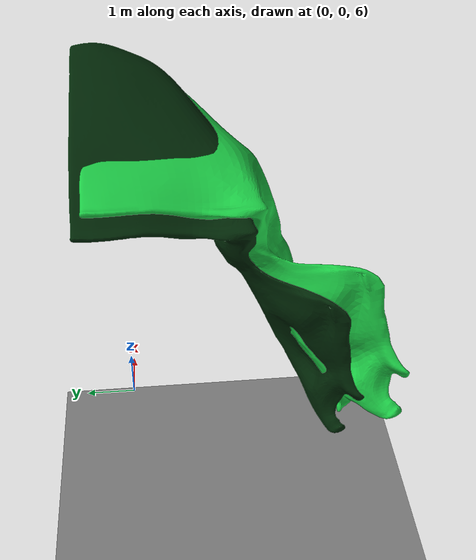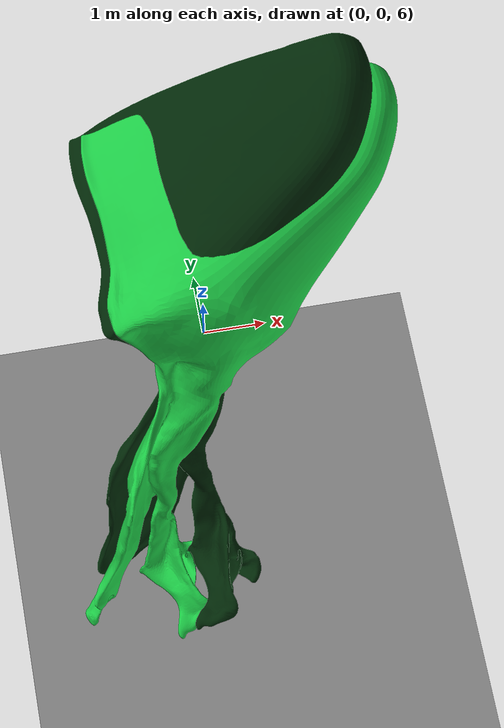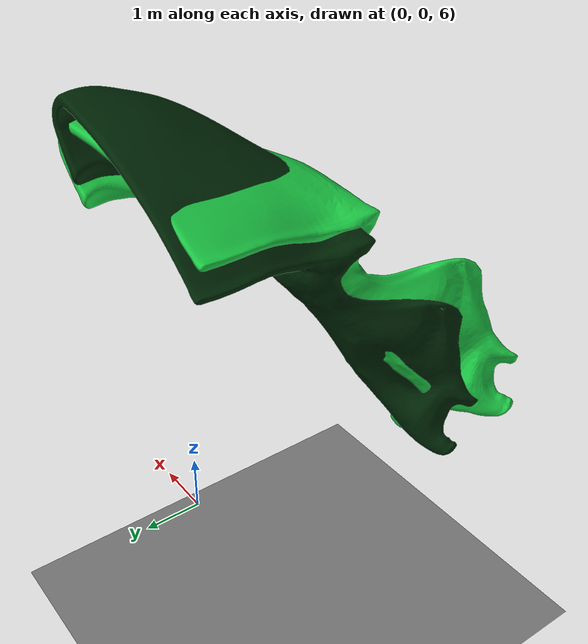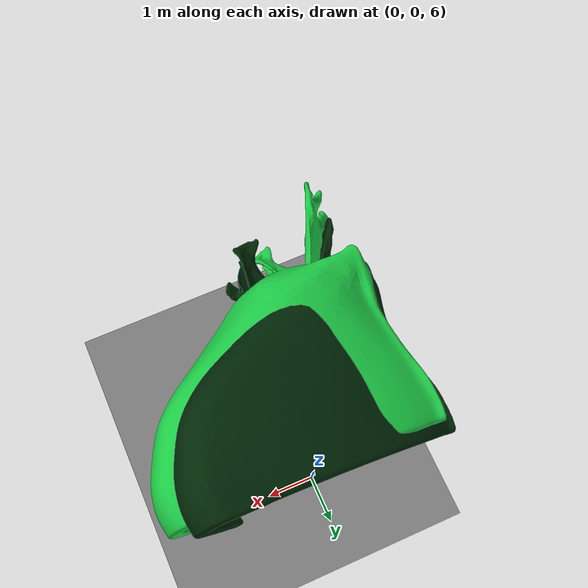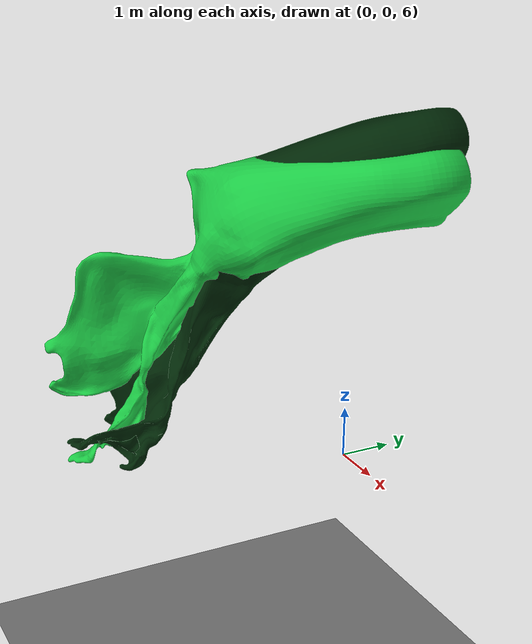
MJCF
<?xml version="1.0" ?>
<mujoco model="just_sla">
    <compiler angle="radian" coordinate="local"/>
    <option timestep="0.002" iterations="100" integrator="Euler" cone="pyramidal" jacobian="dense" solver="Newton">
        <flag sensornoise="enable"/>
    </option>
    <size nconmax="-1" njmax="-1" nuserdata="100"/>
    <asset>
        <mesh name="mesh_SLA_up" file="mesh_stl/SLA_up.stl"/>
        <mesh name="mesh_SLA_down" file="mesh_stl/SLA_down.stl"/>
    </asset>
    <worldbody>
        <geom name="floor" type="plane" size="9.139266967773438 13.406534194946289 0.009999999776482582 " pos="0.0 0.0 2.212449550628662" quat="1.0 0.0 0.0 0.0" mass="1.0" rgba="0.5 0.5 0.5 0.1" contype="1" conaffinity="1"/>
        <body name="SLA_up" pos="-0.31763917207717896 -2.6561203002929688 9.310388565063477" quat="0.9992823004722595 -3.393695280351494e-08 -0.0378803014755249 -9.429858671694547e-09">
            <geom name="SLA_up" type="mesh" pos="0 0 0" quat="1 0 0 0" rgba="0.0 0.15292608737945557 0.025186896324157715 1.0" mass="1.0" contype="1" conaffinity="1" mesh="mesh_SLA_up"/>
            <joint name="sla_world_slide" type="slide" axis="-0.8595173954963684 -0.4222044348716736 0.2880525588989258" pos="-6.124224682935164e-07 5.604622970167839e-07 2.1686087166017387e-06" stiffness="0.0" damping="0.0" springref="0.0" limited="false"/>
            <joint name="sla_world_hinge" type="hinge" axis="-1.1893912553787231 1.1162415742874146 0.9999716877937317" pos="-6.124224682935164e-07 5.604622970167839e-07 2.1686087166017387e-06" stiffness="0.0" damping="0.0" springref="0.0" limited="false"/>
<!--            limited="true" range="-0.2617993950843811 0.2617993950843811"-->
        </body>
        <body name="SLA_down" pos="-0.7016940116882324 -2.8406200408935547 9.407469749450684" quat="0.9962834715843201 -1.8140097424179658e-08 0.08613518625497818 1.019755568876235e-08">
            <geom name="SLA_down" type="mesh" pos="0 0 0" quat="1 0 0 0" rgba="0.11073798686265945 0.8000000715255737 0.27502915263175964 1.0" mass="0" contype="0" conaffinity="0" mesh="mesh_SLA_down"/>
        </body>
        <light directional="true" cutoff="4" exponent="20" diffuse="1 1 1" specular="0 0 0" pos="0.9 0.3 2.5" dir="-0.9 -0.3 -2.5"/>
    </worldbody>
    <contact>
        <exclude body1="SLA_up" body2="SLA_down"/>
    </contact>
    <actuator>
        <position name="SLA_trans_position" joint="sla_world_slide" gear="1" forcelimited="false" ctrllimited="false" kp="5.0e5"/>
        <velocity name="SLA_trans_velocity" joint="sla_world_slide" gear="1" forcelimited="false" ctrllimited="false" kv="1.0e2"/>
        <position name="SLA_rot_position" joint="sla_world_hinge" gear="1" forcelimited="false" ctrllimited="false" kp="5.0e5"/>
        <velocity name="SLA_rot_velocity" joint="sla_world_hinge" gear="1" forcelimited="false" ctrllimited="false" kv="1.0e2"/>
    </actuator>
    <equality/>
    <sensor/>
</mujoco>
